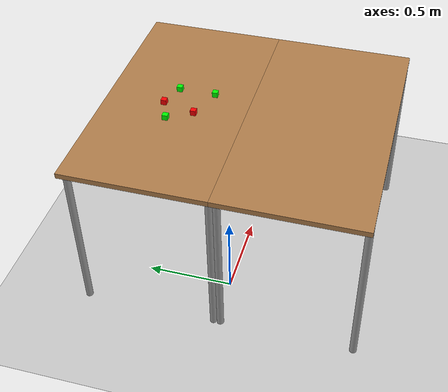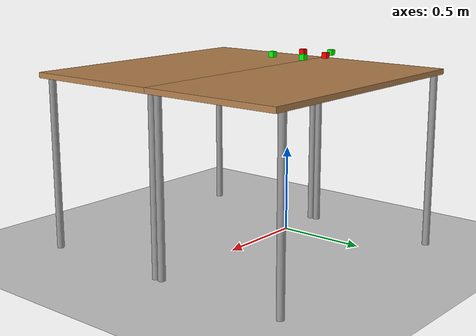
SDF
<sdf version="1.6">
 <world name="default">
  <light name="sun" type="directional">
   <pose>0 0 10 0 -0 0</pose>
   <diffuse>0.8 0.8 0.8 1</diffuse>
   <specular>0.2 0.2 0.2 1</specular>
   <attenuation>
    <range>1000</range>
    <constant>0.9</constant>
    <linear>0.01</linear>
    <quadratic>0.001</quadratic>
   </attenuation>
   <direction>-0.5 0.1 -0.9</direction>
  </light>
  <model name="ground_plane">
   <static>1</static>
   <link name="link">
    <collision name="collision">
     <geometry><plane><normal>0 0 1</normal><size>100 100</size></plane></geometry>
     <surface>
      <contact><collide_bitmask>65535</collide_bitmask></contact>
      <friction><ode><mu>100</mu><mu2>50</mu2></ode></friction>
     </surface>
    </collision>
    <visual name="visual">
     <cast_shadows>0</cast_shadows>
     <geometry><plane><normal>0 0 1</normal><size>100 100</size></plane></geometry>
     <material>
      <script><uri>file://media/materials/scripts/gazebo.material</uri><name>Gazebo/Grey</name></script>
     </material>
    </visual>
   </link>
  </model>
  <gravity>0 0 -9.8</gravity>
  <magnetic_field>6e-06 2.3e-05 -4.2e-05</magnetic_field>
  <atmosphere type="adiabatic"/>
  <physics name="default_physics" default="0" type="ode">
   <max_step_size>0.001</max_step_size>
   <real_time_factor>1</real_time_factor>
   <real_time_update_rate>1000</real_time_update_rate>
  </physics>
  <scene><ambient>0.4 0.4 0.4 1</ambient><background>0.7 0.7 0.7 1</background><shadows>0</shadows></scene>
  <audio><device>default</device></audio>
  <spherical_coordinates>
   <surface_model>EARTH_WGS84</surface_model>
   <latitude_deg>0</latitude_deg>
   <longitude_deg>0</longitude_deg>
   <elevation>0</elevation>
   <heading_deg>0</heading_deg>
  </spherical_coordinates>
  <model name="table">
   <static>1</static>
   <link name="link">
    <collision name="surface">
     <pose>0 0 0.985 0 -0 0</pose>
     <geometry><box><size>1.5 0.8 0.03</size></box></geometry>
     <surface><friction><ode><mu>0.6</mu><mu2>0.6</mu2></ode></friction></surface>
    </collision>
    <visual name="visual1">
     <pose>0 0 0.985 0 -0 0</pose>
     <geometry><box><size>1.5 0.8 0.03</size></box></geometry>
     <material>
      <script><uri>file://media/materials/scripts/gazebo.material</uri><name>Gazebo/Wood</name></script>
     </material>
    </visual>
    <collision name="front_left_leg">
     <pose>0.68 0.38 0.485 0 -0 0</pose>
     <geometry><cylinder><radius>0.02</radius><length>0.97</length></cylinder></geometry>
    </collision>
    <visual name="front_left_leg">
     <pose>0.68 0.38 0.485 0 -0 0</pose>
     <geometry><cylinder><radius>0.02</radius><length>0.97</length></cylinder></geometry>
     <material>
      <script><uri>file://media/materials/scripts/gazebo.material</uri><name>Gazebo/Grey</name></script>
     </material>
    </visual>
    <collision name="front_right_leg">
     <pose>0.68 -0.38 0.485 0 -0 0</pose>
     <geometry><cylinder><radius>0.02</radius><length>0.97</length></cylinder></geometry>
    </collision>
    <visual name="front_right_leg">
     <pose>0.68 -0.38 0.485 0 -0 0</pose>
     <geometry><cylinder><radius>0.02</radius><length>0.97</length></cylinder></geometry>
     <material>
      <script><uri>file://media/materials/scripts/gazebo.material</uri><name>Gazebo/Grey</name></script>
     </material>
    </visual>
    <collision name="back_right_leg">
     <pose>-0.68 -0.38 0.485 0 -0 0</pose>
     <geometry><cylinder><radius>0.02</radius><length>0.97</length></cylinder></geometry>
    </collision>
    <visual name="back_right_leg">
     <pose>-0.68 -0.38 0.485 0 -0 0</pose>
     <geometry><cylinder><radius>0.02</radius><length>0.97</length></cylinder></geometry>
     <material>
      <script><uri>file://media/materials/scripts/gazebo.material</uri><name>Gazebo/Grey</name></script>
     </material>
    </visual>
    <collision name="back_left_leg">
     <pose>-0.68 0.38 0.485 0 -0 0</pose>
     <geometry><cylinder><radius>0.02</radius><length>0.97</length></cylinder></geometry>
    </collision>
    <visual name="back_left_leg">
     <pose>-0.68 0.38 0.485 0 -0 0</pose>
     <geometry><cylinder><radius>0.02</radius><length>0.97</length></cylinder></geometry>
     <material>
      <script><uri>file://media/materials/scripts/gazebo.material</uri><name>Gazebo/Grey</name></script>
     </material>
    </visual>
   </link>
   <pose>0.4 0.4 0 0 -0 0</pose>
  </model>
  <model name="table_clone">
   <static>1</static>
   <link name="link">
    <collision name="surface">
     <pose>0 0 0.985 0 -0 0</pose>
     <geometry><box><size>1.5 0.8 0.03</size></box></geometry>
     <surface><friction><ode><mu>0.6</mu><mu2>0.6</mu2></ode></friction></surface>
    </collision>
    <visual name="visual1">
     <pose>0 0 0.985 0 -0 0</pose>
     <geometry><box><size>1.5 0.8 0.03</size></box></geometry>
     <material>
      <script><uri>file://media/materials/scripts/gazebo.material</uri><name>Gazebo/Wood</name></script>
     </material>
    </visual>
    <collision name="front_left_leg">
     <pose>0.68 0.38 0.485 0 -0 0</pose>
     <geometry><cylinder><radius>0.02</radius><length>0.97</length></cylinder></geometry>
    </collision>
    <visual name="front_left_leg">
     <pose>0.68 0.38 0.485 0 -0 0</pose>
     <geometry><cylinder><radius>0.02</radius><length>0.97</length></cylinder></geometry>
     <material>
      <script><uri>file://media/materials/scripts/gazebo.material</uri><name>Gazebo/Grey</name></script>
     </material>
    </visual>
    <collision name="front_right_leg">
     <pose>0.68 -0.38 0.485 0 -0 0</pose>
     <geometry><cylinder><radius>0.02</radius><length>0.97</length></cylinder></geometry>
    </collision>
    <visual name="front_right_leg">
     <pose>0.68 -0.38 0.485 0 -0 0</pose>
     <geometry><cylinder><radius>0.02</radius><length>0.97</length></cylinder></geometry>
     <material>
      <script><uri>file://media/materials/scripts/gazebo.material</uri><name>Gazebo/Grey</name></script>
     </material>
    </visual>
    <collision name="back_right_leg">
     <pose>-0.68 -0.38 0.485 0 -0 0</pose>
     <geometry><cylinder><radius>0.02</radius><length>0.97</length></cylinder></geometry>
    </collision>
    <visual name="back_right_leg">
     <pose>-0.68 -0.38 0.485 0 -0 0</pose>
     <geometry><cylinder><radius>0.02</radius><length>0.97</length></cylinder></geometry>
     <material>
      <script><uri>file://media/materials/scripts/gazebo.material</uri><name>Gazebo/Grey</name></script>
     </material>
    </visual>
    <collision name="back_left_leg">
     <pose>-0.68 0.38 0.485 0 -0 0</pose>
     <geometry><cylinder><radius>0.02</radius><length>0.97</length></cylinder></geometry>
    </collision>
    <visual name="back_left_leg">
     <pose>-0.68 0.38 0.485 0 -0 0</pose>
     <geometry><cylinder><radius>0.02</radius><length>0.97</length></cylinder></geometry>
     <material>
      <script><uri>file://media/materials/scripts/gazebo.material</uri><name>Gazebo/Grey</name></script>
     </material>
    </visual>
   </link>
   <pose>0.4 -0.4 0 0 -0 0</pose>
  </model>
  <model name="red_box_1">
   <link name="link">
    <inertial>
     <mass>0.01</mass>
     <inertia>
      <ixx>0.00010417</ixx>
      <ixy>0</ixy>
      <ixz>0</ixz>
      <iyy>0.00010417</iyy>
      <iyz>0</iyz>
      <izz>4.167e-05</izz>
     </inertia>
    </inertial>
    <visual name="visual">
     <geometry><box><size>0.030 0.030 0.030</size></box></geometry>
     <material>
      <script><name>Gazebo/Grey</name><uri>file://media/materials/scripts/gazebo.material</uri></script>
      <shader type="vertex"><normal_map>__default__</normal_map></shader>
      <ambient>1 0 0 1</ambient>
      <diffuse>1 0 0 1</diffuse>
      <specular>1 0 0 1</specular>
      <emissive>1 0 0 1</emissive>
     </material>
    </visual>
    <collision name="collision">
     <geometry><box><size>0.030 0.030 0.030</size></box></geometry>
     <surface>
      <friction>
       <ode><mu>9</mu><mu2>9</mu2><fdir1>0 0 0</fdir1><slip1>0</slip1><slip2>0</slip2></ode>
       <torsional>
        <coefficient>1</coefficient>
        <patch_radius>0</patch_radius>
        <surface_radius>0</surface_radius>
        <use_patch_radius>1</use_patch_radius>
        <ode><slip>0</slip></ode>
       </torsional>
      </friction>
      <bounce><restitution_coefficient>0</restitution_coefficient><threshold>1e+06</threshold></bounce>
      <contact>
       <collide_without_contact>0</collide_without_contact>
       <collide_without_contact_bitmask>1</collide_without_contact_bitmask>
       <collide_bitmask>1</collide_bitmask>
       <ode>
        <soft_cfm>0</soft_cfm>
        <soft_erp>0.2</soft_erp>
        <kp>1e+13</kp>
        <kd>1</kd>
        <max_vel>0.01</max_vel>
        <min_depth>0</min_depth>
       </ode>
       <bullet>
        <split_impulse>1</split_impulse>
        <split_impulse_penetration_threshold>-0.01</split_impulse_penetration_threshold>
        <soft_cfm>0</soft_cfm>
        <soft_erp>0.2</soft_erp>
        <kp>1e+13</kp>
        <kd>1</kd>
       </bullet>
      </contact>
     </surface>
    </collision>
   </link>
   <static>0</static>
   <pose>0.190 0.240 1.1 0 0 0</pose>
  </model>
  <model name="red_box_2">
   <link name="link">
    <inertial>
     <mass>0.01</mass>
     <inertia>
      <ixx>0.00010417</ixx>
      <ixy>0</ixy>
      <ixz>0</ixz>
      <iyy>0.00010417</iyy>
      <iyz>0</iyz>
      <izz>4.167e-05</izz>
     </inertia>
    </inertial>
    <visual name="visual">
     <geometry><box><size>0.030 0.030 0.030</size></box></geometry>
     <material>
      <script><name>Gazebo/Grey</name><uri>file://media/materials/scripts/gazebo.material</uri></script>
      <shader type="vertex"><normal_map>__default__</normal_map></shader>
      <ambient>1 0 0 1</ambient>
      <diffuse>1 0 0 1</diffuse>
      <specular>1 0 0 1</specular>
      <emissive>1 0 0 1</emissive>
     </material>
    </visual>
    <collision name="collision">
     <geometry><box><size>0.030 0.030 0.030</size></box></geometry>
     <surface>
      <friction>
       <ode><mu>9</mu><mu2>9</mu2><fdir1>0 0 0</fdir1><slip1>0</slip1><slip2>0</slip2></ode>
       <torsional>
        <coefficient>1</coefficient>
        <patch_radius>0</patch_radius>
        <surface_radius>0</surface_radius>
        <use_patch_radius>1</use_patch_radius>
        <ode><slip>0</slip></ode>
       </torsional>
      </friction>
      <bounce><restitution_coefficient>0</restitution_coefficient><threshold>1e+06</threshold></bounce>
      <contact>
       <collide_without_contact>0</collide_without_contact>
       <collide_without_contact_bitmask>1</collide_without_contact_bitmask>
       <collide_bitmask>1</collide_bitmask>
       <ode>
        <soft_cfm>0</soft_cfm>
        <soft_erp>0.2</soft_erp>
        <kp>1e+13</kp>
        <kd>1</kd>
        <max_vel>0.01</max_vel>
        <min_depth>0</min_depth>
       </ode>
       <bullet>
        <split_impulse>1</split_impulse>
        <split_impulse_penetration_threshold>-0.01</split_impulse_penetration_threshold>
        <soft_cfm>0</soft_cfm>
        <soft_erp>0.2</soft_erp>
        <kp>1e+13</kp>
        <kd>1</kd>
       </bullet>
      </contact>
     </surface>
    </collision>
   </link>
   <static>0</static>
   <pose>0.240 0.42 1.1 0 0 0</pose>
  </model>
  <model name="green_box_1">
   <link name="link">
    <inertial>
     <mass>0.01</mass>
     <inertia>
      <ixx>0.00010417</ixx>
      <ixy>0</ixy>
      <ixz>0</ixz>
      <iyy>0.00010417</iyy>
      <iyz>0</iyz>
      <izz>4.167e-05</izz>
     </inertia>
    </inertial>
    <visual name="visual">
     <geometry><box><size>0.030 0.030 0.030</size></box></geometry>
     <material>
      <script><name>Gazebo/Grey</name><uri>file://media/materials/scripts/gazebo.material</uri></script>
      <shader type="vertex"><normal_map>__default__</normal_map></shader>
      <ambient>0 1 0 1</ambient>
      <diffuse>0 1 0 1</diffuse>
      <specular>0 1 0 1</specular>
      <emissive>0 1 0 1</emissive>
     </material>
    </visual>
    <collision name="collision">
     <geometry><box><size>0.030 0.030 0.030</size></box></geometry>
     <surface>
      <friction>
       <ode><mu>9</mu><mu2>9</mu2><fdir1>0 0 0</fdir1><slip1>0</slip1><slip2>0</slip2></ode>
       <torsional>
        <coefficient>1</coefficient>
        <patch_radius>0</patch_radius>
        <surface_radius>0</surface_radius>
        <use_patch_radius>1</use_patch_radius>
        <ode><slip>0</slip></ode>
       </torsional>
      </friction>
      <bounce><restitution_coefficient>0</restitution_coefficient><threshold>1e+06</threshold></bounce>
      <contact>
       <collide_without_contact>0</collide_without_contact>
       <collide_without_contact_bitmask>1</collide_without_contact_bitmask>
       <collide_bitmask>1</collide_bitmask>
       <ode>
        <soft_cfm>0</soft_cfm>
        <soft_erp>0.2</soft_erp>
        <kp>1e+13</kp>
        <kd>1</kd>
        <max_vel>0.01</max_vel>
        <min_depth>0</min_depth>
       </ode>
       <bullet>
        <split_impulse>1</split_impulse>
        <split_impulse_penetration_threshold>-0.01</split_impulse_penetration_threshold>
        <soft_cfm>0</soft_cfm>
        <soft_erp>0.2</soft_erp>
        <kp>1e+13</kp>
        <kd>1</kd>
       </bullet>
      </contact>
     </surface>
    </collision>
   </link>
   <static>0</static>
   <pose>0.115 0.37 1.1 0 0 0</pose>
  </model>
  <model name="green_box_2">
   <link name="link">
    <inertial>
     <mass>0.01</mass>
     <inertia>
      <ixx>0.00010417</ixx>
      <ixy>0</ixy>
      <ixz>0</ixz>
      <iyy>0.00010417</iyy>
      <iyz>0</iyz>
      <izz>4.167e-05</izz>
     </inertia>
    </inertial>
    <visual name="visual">
     <geometry><box><size>0.030 0.030 0.030</size></box></geometry>
     <material>
      <script><name>Gazebo/Grey</name><uri>file://media/materials/scripts/gazebo.material</uri></script>
      <shader type="vertex"><normal_map>__default__</normal_map></shader>
      <ambient>0 1 0 1</ambient>
      <diffuse>0 1 0 1</diffuse>
      <specular>0 1 0 1</specular>
      <emissive>0 1 0 1</emissive>
     </material>
    </visual>
    <collision name="collision">
     <geometry><box><size>0.030 0.030 0.030</size></box></geometry>
     <surface>
      <friction>
       <ode><mu>9</mu><mu2>9</mu2><fdir1>0 0 0</fdir1><slip1>0</slip1><slip2>0</slip2></ode>
       <torsional>
        <coefficient>1</coefficient>
        <patch_radius>0</patch_radius>
        <surface_radius>0</surface_radius>
        <use_patch_radius>1</use_patch_radius>
        <ode><slip>0</slip></ode>
       </torsional>
      </friction>
      <bounce><restitution_coefficient>0</restitution_coefficient><threshold>1e+06</threshold></bounce>
      <contact>
       <collide_without_contact>0</collide_without_contact>
       <collide_without_contact_bitmask>1</collide_without_contact_bitmask>
       <collide_bitmask>1</collide_bitmask>
       <ode>
        <soft_cfm>0</soft_cfm>
        <soft_erp>0.2</soft_erp>
        <kp>1e+13</kp>
        <kd>1</kd>
        <max_vel>0.01</max_vel>
        <min_depth>0</min_depth>
       </ode>
       <bullet>
        <split_impulse>1</split_impulse>
        <split_impulse_penetration_threshold>-0.01</split_impulse_penetration_threshold>
        <soft_cfm>0</soft_cfm>
        <soft_erp>0.2</soft_erp>
        <kp>1e+13</kp>
        <kd>1</kd>
       </bullet>
      </contact>
     </surface>
    </collision>
   </link>
   <static>0</static>
   <pose>0.375 0.375 1.1 0 0 0</pose>
  </model>
  <model name="green_box_3">
   <link name="link">
    <inertial>
     <mass>0.01</mass>
     <inertia>
      <ixx>0.00010417</ixx>
      <ixy>0</ixy>
      <ixz>0</ixz>
      <iyy>0.00010417</iyy>
      <iyz>0</iyz>
      <izz>4.167e-05</izz>
     </inertia>
    </inertial>
    <visual name="visual">
     <geometry><box><size>0.030 0.030 0.030</size></box></geometry>
     <material>
      <script><name>Gazebo/Grey</name><uri>file://media/materials/scripts/gazebo.material</uri></script>
      <shader type="vertex"><normal_map>__default__</normal_map></shader>
      <ambient>0 1 0 1</ambient>
      <diffuse>0 1 0 1</diffuse>
      <specular>0 1 0 1</specular>
      <emissive>0 1 0 1</emissive>
     </material>
    </visual>
    <collision name="collision">
     <geometry><box><size>0.030 0.030 0.030</size></box></geometry>
     <surface>
      <friction>
       <ode><mu>9</mu><mu2>9</mu2><fdir1>0 0 0</fdir1><slip1>0</slip1><slip2>0</slip2></ode>
       <torsional>
        <coefficient>1</coefficient>
        <patch_radius>0</patch_radius>
        <surface_radius>0</surface_radius>
        <use_patch_radius>1</use_patch_radius>
        <ode><slip>0</slip></ode>
       </torsional>
      </friction>
      <bounce><restitution_coefficient>0</restitution_coefficient><threshold>1e+06</threshold></bounce>
      <contact>
       <collide_without_contact>0</collide_without_contact>
       <collide_without_contact_bitmask>1</collide_without_contact_bitmask>
       <collide_bitmask>1</collide_bitmask>
       <ode>
        <soft_cfm>0</soft_cfm>
        <soft_erp>0.2</soft_erp>
        <kp>1e+13</kp>
        <kd>1</kd>
        <max_vel>0.01</max_vel>
        <min_depth>0</min_depth>
       </ode>
       <bullet>
        <split_impulse>1</split_impulse>
        <split_impulse_penetration_threshold>-0.01</split_impulse_penetration_threshold>
        <soft_cfm>0</soft_cfm>
        <soft_erp>0.2</soft_erp>
        <kp>1e+13</kp>
        <kd>1</kd>
       </bullet>
      </contact>
     </surface>
    </collision>
   </link>
   <static>0</static>
   <pose>0.374 0.175 1.1 0 0 0</pose>
  </model>
 </world>
</sdf>
